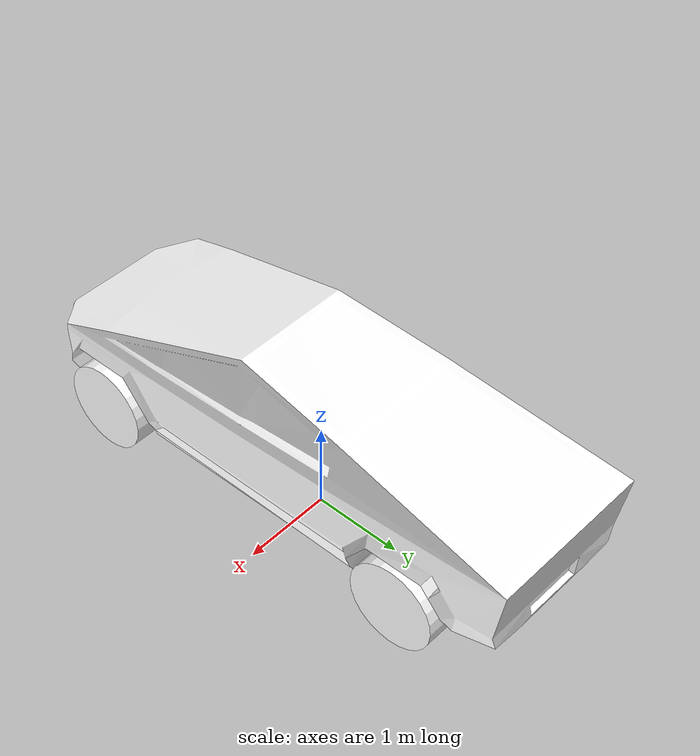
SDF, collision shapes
<?xml version="1.0" ?>
<sdf version="1.5">
  <model name='cybertruck' canonical_link='body'>
    <pose>0 0 0 0 0 0</pose>
    <static>false</static>
    <link name="body">
      <pose relative_to='__model__'>0 0 0.25 0 0 0</pose>
      <inertial>
        <mass>3000.0</mass>
        <inertia>
          <ixx>3125</ixx>
          <ixy>0</ixy>
          <ixz>0</ixz>
          <iyy>10562.5</iyy>
          <iyz>0</iyz>
          <izz>10562.5</izz>
        </inertia>
      </inertial>
      <collision name="collision">
        <geometry>
          <mesh>
            <uri>model://cybertruck/meshes/body.dae</uri>
            <scale>1.0 1.0 1.0</scale>
          </mesh>
        </geometry>
      </collision>
      <visual name="visual">
        <geometry>
          <mesh>
            <uri>model://cybertruck/meshes/body.dae</uri>
            <scale>1.0 1.0 1.0</scale>
          </mesh>
        </geometry>
        <material>
          <diffuse>1.0 1.0 1.0</diffuse>
          <pbr>
            <metal>
              <albedo_map>model://cybertruck/materials/textures/truck_color.png</albedo_map>
              <roughness_map>model://cybertruck/materials/textures/truck_roughness.png</roughness_map>
              <metalness_map>model://cybertruck/materials/textures/truck_metallic.png</metalness_map>
            </metal>
          </pbr>
        </material>
      </visual>
    </link>

    <link name='rear_right_wheel'>
      <pose relative_to="body">-0.9 1.8 0.5 0 -1.57 0</pose>
      <inertial>
        <mass>32</mass>
        <inertia>
          <ixx>0.656</ixx>
          <ixy>0</ixy>
          <ixz>0</ixz>
          <iyy>0.656</iyy>
          <iyz>0</iyz>
          <izz>1.033</izz>
        </inertia>
      </inertial>
      <visual name="visual">
        <geometry>
          <mesh>
            <uri>model://cybertruck/meshes/wheel.dae</uri>
            <scale>1.0 1.0 1.0</scale>
          </mesh>
        </geometry>
        <material>
          <diffuse>1.0 1.0 1.0</diffuse>
          <pbr>
            <metal>
              <albedo_map>model://cybertruck/materials/textures/wheel_color.png</albedo_map>
            </metal>
          </pbr>
        </material>
      </visual>
      <collision name='collision'>
        <geometry>
          <cylinder>
            <radius>0.48</radius>
            <length>0.3</length>
          </cylinder>
        </geometry>
      </collision>
    </link>

    <link name='rear_left_wheel'>
      <pose relative_to="body">0.9 1.8 0.5 0 -1.57 3.14</pose>
      <inertial>
        <mass>32</mass>
        <inertia>
          <ixx>0.656</ixx>
          <ixy>0</ixy>
          <ixz>0</ixz>
          <iyy>0.656</iyy>
          <iyz>0</iyz>
          <izz>1.033</izz>
        </inertia>
      </inertial>
      <visual name="visual">
        <geometry>
          <mesh>
            <uri>model://cybertruck/meshes/wheel.dae</uri>
            <scale>1.0 1.0 1.0</scale>
          </mesh>
        </geometry>
        <material>
          <diffuse>1.0 1.0 1.0</diffuse>
          <pbr>
            <metal>
              <albedo_map>model://cybertruck/materials/textures/wheel_color.png</albedo_map>
            </metal>
          </pbr>
        </material>
      </visual>
      <collision name='collision'>
        <geometry>
          <cylinder>
            <radius>0.48</radius>
            <length>0.3</length>
          </cylinder>
        </geometry>
      </collision>
    </link>

    <link name='front_right_wheel'>
      <pose relative_to="body">-0.9 -2.0 0.5 0 -1.57 0</pose>
      <inertial>
        <mass>32</mass>
        <inertia>
          <ixx>0.656</ixx>
          <ixy>0</ixy>
          <ixz>0</ixz>
          <iyy>0.656</iyy>
          <iyz>0</iyz>
          <izz>1.033</izz>
        </inertia>
      </inertial>
      <visual name="visual">
        <geometry>
          <mesh>
            <uri>model://cybertruck/meshes/wheel.dae</uri>
            <scale>1.0 1.0 1.0</scale>
          </mesh>
        </geometry>
        <material>
          <diffuse>1.0 1.0 1.0</diffuse>
          <pbr>
            <metal>
              <albedo_map>model://cybertruck/materials/textures/wheel_color.png</albedo_map>
            </metal>
          </pbr>
        </material>
      </visual>
      <collision name='collision'>
        <geometry>
          <cylinder>
            <radius>0.48</radius>
            <length>0.3</length>
          </cylinder>
        </geometry>
      </collision>
    </link>

    <link name='front_left_wheel'>
      <pose relative_to="body">0.9 -2.0 0.5 0 -1.57 3.14</pose>
      <inertial>
        <mass>32</mass>
        <inertia>
          <ixx>0.656</ixx>
          <ixy>0</ixy>
          <ixz>0</ixz>
          <iyy>0.656</iyy>
          <iyz>0</iyz>
          <izz>1.033</izz>
        </inertia>
      </inertial>
      <visual name="visual">
        <geometry>
          <mesh>
            <uri>model://cybertruck/meshes/wheel.dae</uri>
            <scale>1.0 1.0 1.0</scale>
          </mesh>
        </geometry>
        <material>
          <diffuse>1.0 1.0 1.0</diffuse>
          <pbr>
            <metal>
              <albedo_map>model://cybertruck/materials/textures/wheel_color.png</albedo_map>
            </metal>
          </pbr>
        </material>
      </visual>
      <collision name='collision'>
        <geometry>
          <cylinder>
            <radius>0.48</radius>
            <length>0.3</length>
          </cylinder>
        </geometry>
      </collision>
    </link>

    <joint name='rear_right_wheel_joint' type='revolute'>
      <pose relative_to='rear_right_wheel'/>
      <parent>body</parent>
      <child>rear_right_wheel</child>
      <axis>
        <xyz expressed_in='__model__'>0 0 1</xyz>
        <limit>
          <lower>-1.79769e+308</lower>    <!--negative infinity-->
          <upper>1.79769e+308</upper>     <!--positive infinity-->
        </limit>
      </axis>
    </joint>

    <joint name='rear_left_wheel_joint' type='revolute'>
      <pose relative_to='rear_right_wheel'/>
      <parent>body</parent>
      <child>rear_left_wheel</child>
      <axis>
        <xyz expressed_in='__model__'>0 0 1</xyz>
        <limit>
          <lower>-1.79769e+308</lower>    <!--negative infinity-->
          <upper>1.79769e+308</upper>     <!--positive infinity-->
        </limit>
      </axis>
    </joint>

    <joint name='front_right_wheel_joint' type='revolute'>
      <pose relative_to='front_right_wheel'/>
      <parent>body</parent>
      <child>front_right_wheel</child>
      <axis>
        <xyz expressed_in='__model__'>0 0 1</xyz>
        <limit>
          <lower>-1.79769e+308</lower>    <!--negative infinity-->
          <upper>1.79769e+308</upper>     <!--positive infinity-->
        </limit>
      </axis>
    </joint>

    <joint name='front_left_wheel_joint' type='revolute'>
      <pose relative_to='front_right_wheel'/>
      <parent>body</parent>
      <child>front_left_wheel</child>
      <axis>
        <xyz expressed_in='__model__'>0 0 1</xyz>
        <limit>
          <lower>-1.79769e+308</lower>    <!--negative infinity-->
          <upper>1.79769e+308</upper>     <!--positive infinity-->
        </limit>
      </axis>
    </joint>
  </model>

</sdf>
